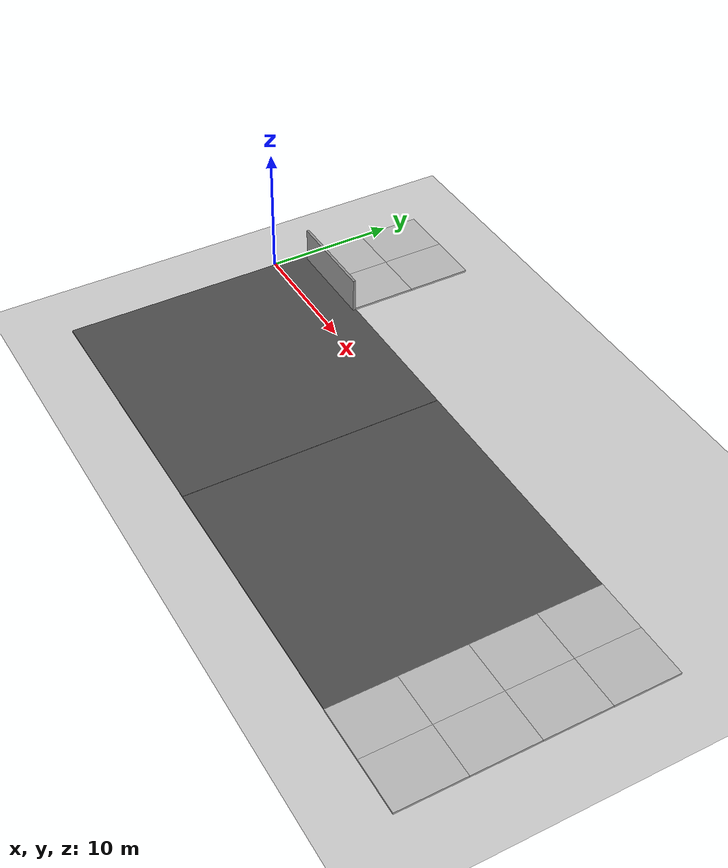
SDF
<sdf version="1.6">
 <world name="default">
  <light name="sun" type="directional">
   <pose>0 0 10 0 -0 0</pose>
   <diffuse>0.8 0.8 0.8 1</diffuse>
   <specular>0.2 0.2 0.2 1</specular>
   <attenuation>
    <range>1000</range>
    <constant>0.9</constant>
    <linear>0.01</linear>
    <quadratic>0.001</quadratic>
   </attenuation>
   <direction>-0.5 0.1 -0.9</direction>
  </light>
  <model name="ground_plane">
   <static>1</static>
   <link name="link">
    <collision name="collision">
     <geometry><plane><normal>0 0 1</normal><size>100 100</size></plane></geometry>
     <surface>
      <contact><collide_bitmask>65535</collide_bitmask></contact>
      <friction><ode><mu>100</mu><mu2>50</mu2></ode></friction>
     </surface>
    </collision>
    <visual name="visual">
     <cast_shadows>0</cast_shadows>
     <geometry><plane><normal>0 0 1</normal><size>100 100</size></plane></geometry>
     <material>
      <script><uri>file://media/materials/scripts/gazebo.material</uri><name>Gazebo/Grey</name></script>
     </material>
    </visual>
   </link>
  </model>
  <gravity>0 0 -9.8</gravity>
  <magnetic_field>6e-06 2.3e-05 -4.2e-05</magnetic_field>
  <atmosphere type="adiabatic"/>
  <physics name="default_physics" default="0" type="ode">
   <max_step_size>0.001</max_step_size>
   <real_time_factor>1</real_time_factor>
   <real_time_update_rate>1000</real_time_update_rate>
  </physics>
  <scene><ambient>0.4 0.4 0.4 1</ambient><background>0.7 0.7 0.7 1</background><shadows>1</shadows></scene>
  <spherical_coordinates>
   <surface_model>EARTH_WGS84</surface_model>
   <latitude_deg>0</latitude_deg>
   <longitude_deg>0</longitude_deg>
   <elevation>0</elevation>
   <heading_deg>0</heading_deg>
  </spherical_coordinates>
  <model name="grey_wall">
   <static>1</static>
   <link name="link">
    <pose>0 0 1.4 0 -0 0</pose>
    <collision name="collision"><geometry><box><size>7.5 0.2 2.8</size></box></geometry></collision>
    <visual name="visual">
     <cast_shadows>0</cast_shadows>
     <geometry><box><size>7.5 0.2 2.8</size></box></geometry>
     <material>
      <script>
       <uri>model://grey_wall/materials/scripts</uri>
       <uri>model://grey_wall/materials/textures</uri>
       <name>vrc/grey_wall</name>
      </script>
     </material>
    </visual>
   </link>
   <pose>4.44214 2.62098 0 0 -0 0</pose>
  </model>
  <model name="mud_box">
   <static>1</static>
   <link name="link">
    <collision name="collision"><geometry><box><size>8 10 0.2</size></box></geometry></collision>
    <visual name="visual_1">
     <pose>-2 2.5 0 0 -0 0</pose>
     <cast_shadows>0</cast_shadows>
     <geometry><box><size>4 5 0.2</size></box></geometry>
     <material>
      <script>
       <uri>model://mud_box/materials/scripts</uri>
       <uri>model://mud_box/materials/textures</uri>
       <name>vrc/mud</name>
      </script>
     </material>
    </visual>
    <visual name="visual_2">
     <pose>2 2.5 0 0 -0 0</pose>
     <cast_shadows>0</cast_shadows>
     <geometry><box><size>4 5 0.2</size></box></geometry>
     <material>
      <script>
       <uri>model://mud_box/materials/scripts</uri>
       <uri>model://mud_box/materials/textures</uri>
       <name>vrc/mud</name>
      </script>
     </material>
    </visual>
    <visual name="visual_3">
     <pose>2 -2.5 0 0 -0 0</pose>
     <cast_shadows>0</cast_shadows>
     <geometry><box><size>4 5 0.2</size></box></geometry>
     <material>
      <script>
       <uri>model://mud_box/materials/scripts</uri>
       <uri>model://mud_box/materials/textures</uri>
       <name>vrc/mud</name>
      </script>
     </material>
    </visual>
    <visual name="visual_4">
     <pose>-2 -2.5 0 0 -0 0</pose>
     <cast_shadows>0</cast_shadows>
     <geometry><box><size>4 5 0.2</size></box></geometry>
     <material>
      <script>
       <uri>model://mud_box/materials/scripts</uri>
       <uri>model://mud_box/materials/textures</uri>
       <name>vrc/mud</name>
      </script>
     </material>
    </visual>
   </link>
   <pose>4.12782 7.75227 0 0 -0 0</pose>
  </model>
  <model name="asphalt_plane">
   <static>1</static>
   <link name="link">
    <collision name="collision"><geometry><box><size>20 20 0.1</size></box></geometry></collision>
    <visual name="visual">
     <cast_shadows>0</cast_shadows>
     <geometry><box><size>20 20 0.1</size></box></geometry>
     <material>
      <script>
       <uri>model://asphalt_plane/materials/scripts</uri>
       <uri>model://asphalt_plane/materials/textures</uri>
       <name>vrc/asphalt</name>
      </script>
     </material>
    </visual>
   </link>
   <pose>10.1266 -7.23699 0 0 -0 0</pose>
  </model>
  <model name="asphalt_plane_0">
   <static>1</static>
   <link name="link">
    <collision name="collision"><geometry><box><size>20 20 0.1</size></box></geometry></collision>
    <visual name="visual">
     <cast_shadows>0</cast_shadows>
     <geometry><box><size>20 20 0.1</size></box></geometry>
     <material>
      <script>
       <uri>model://asphalt_plane/materials/scripts</uri>
       <uri>model://asphalt_plane/materials/textures</uri>
       <name>vrc/asphalt</name>
      </script>
     </material>
    </visual>
   </link>
   <pose>30.151 -7.23709 0 0 -0 0</pose>
  </model>
  <model name="mud_box_0">
   <static>1</static>
   <link name="link">
    <collision name="collision"><geometry><box><size>8 10 0.2</size></box></geometry></collision>
    <visual name="visual_1">
     <pose>-2 2.5 0 0 -0 0</pose>
     <cast_shadows>0</cast_shadows>
     <geometry><box><size>4 5 0.2</size></box></geometry>
     <material>
      <script>
       <uri>model://mud_box/materials/scripts</uri>
       <uri>model://mud_box/materials/textures</uri>
       <name>vrc/mud</name>
      </script>
     </material>
    </visual>
    <visual name="visual_2">
     <pose>2 2.5 0 0 -0 0</pose>
     <cast_shadows>0</cast_shadows>
     <geometry><box><size>4 5 0.2</size></box></geometry>
     <material>
      <script>
       <uri>model://mud_box/materials/scripts</uri>
       <uri>model://mud_box/materials/textures</uri>
       <name>vrc/mud</name>
      </script>
     </material>
    </visual>
    <visual name="visual_3">
     <pose>2 -2.5 0 0 -0 0</pose>
     <cast_shadows>0</cast_shadows>
     <geometry><box><size>4 5 0.2</size></box></geometry>
     <material>
      <script>
       <uri>model://mud_box/materials/scripts</uri>
       <uri>model://mud_box/materials/textures</uri>
       <name>vrc/mud</name>
      </script>
     </material>
    </visual>
    <visual name="visual_4">
     <pose>-2 -2.5 0 0 -0 0</pose>
     <cast_shadows>0</cast_shadows>
     <geometry><box><size>4 5 0.2</size></box></geometry>
     <material>
      <script>
       <uri>model://mud_box/materials/scripts</uri>
       <uri>model://mud_box/materials/textures</uri>
       <name>vrc/mud</name>
      </script>
     </material>
    </visual>
   </link>
   <pose>44.0601 -2.25438 0 0 -0 0</pose>
  </model>
  <model name="mud_box_1">
   <static>1</static>
   <link name="link">
    <collision name="collision"><geometry><box><size>8 10 0.2</size></box></geometry></collision>
    <visual name="visual_1">
     <pose>-2 2.5 0 0 -0 0</pose>
     <cast_shadows>0</cast_shadows>
     <geometry><box><size>4 5 0.2</size></box></geometry>
     <material>
      <script>
       <uri>model://mud_box/materials/scripts</uri>
       <uri>model://mud_box/materials/textures</uri>
       <name>vrc/mud</name>
      </script>
     </material>
    </visual>
    <visual name="visual_2">
     <pose>2 2.5 0 0 -0 0</pose>
     <cast_shadows>0</cast_shadows>
     <geometry><box><size>4 5 0.2</size></box></geometry>
     <material>
      <script>
       <uri>model://mud_box/materials/scripts</uri>
       <uri>model://mud_box/materials/textures</uri>
       <name>vrc/mud</name>
      </script>
     </material>
    </visual>
    <visual name="visual_3">
     <pose>2 -2.5 0 0 -0 0</pose>
     <cast_shadows>0</cast_shadows>
     <geometry><box><size>4 5 0.2</size></box></geometry>
     <material>
      <script>
       <uri>model://mud_box/materials/scripts</uri>
       <uri>model://mud_box/materials/textures</uri>
       <name>vrc/mud</name>
      </script>
     </material>
    </visual>
    <visual name="visual_4">
     <pose>-2 -2.5 0 0 -0 0</pose>
     <cast_shadows>0</cast_shadows>
     <geometry><box><size>4 5 0.2</size></box></geometry>
     <material>
      <script>
       <uri>model://mud_box/materials/scripts</uri>
       <uri>model://mud_box/materials/textures</uri>
       <name>vrc/mud</name>
      </script>
     </material>
    </visual>
   </link>
   <pose>44.0603 -12.2531 0 0 -0 0</pose>
  </model>
  <plugin name="ros_interface_plugin" filename="librotors_gazebo_ros_interface_plugin.so"/>
 </world>
</sdf>
